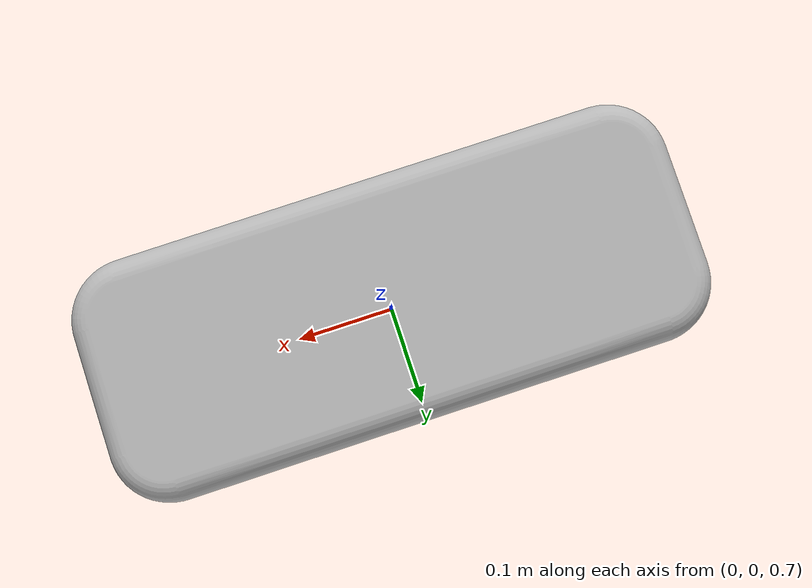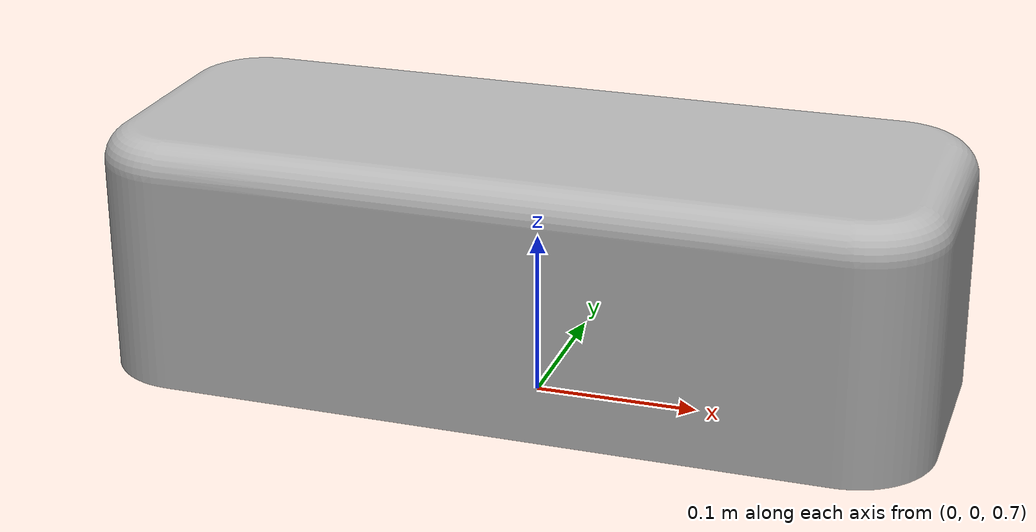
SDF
<?xml version="1.0" ?>
<sdf version="1.5">

<model name="simplified_biped">
    <link name="torso_connection">
        <self_collide> 1 </self_collide>

        <pose> 0 0 0.8 0 0 0 </pose>

        <inertial>
            <mass>30</mass>

            <inertia>
                <ixx>0.1536</ixx>
		        <iyy>0.62288</iyy>
                <izz>0.6843</izz>
            </inertia>
        </inertial>

        <collision name="torso_connection_collision">
            <geometry>
                <mesh>
	   		 		<uri>model://simplified_biped/meshes/torso_connection.stl</uri>
				</mesh>
            </geometry>
        </collision>

        <visual name="torso_connection_visual">
            <geometry>
                <mesh>
					<uri>model://simplified_biped/meshes/torso_connection.stl</uri>
				</mesh>
            </geometry>
        </visual>
    </link>
</model>
</sdf>
